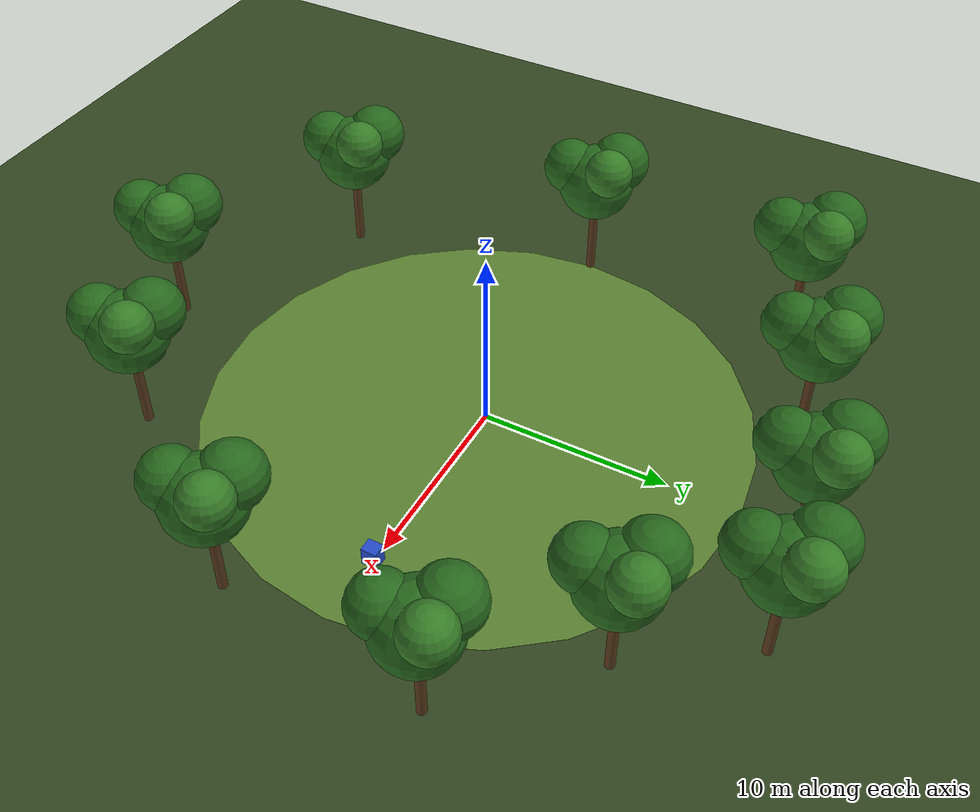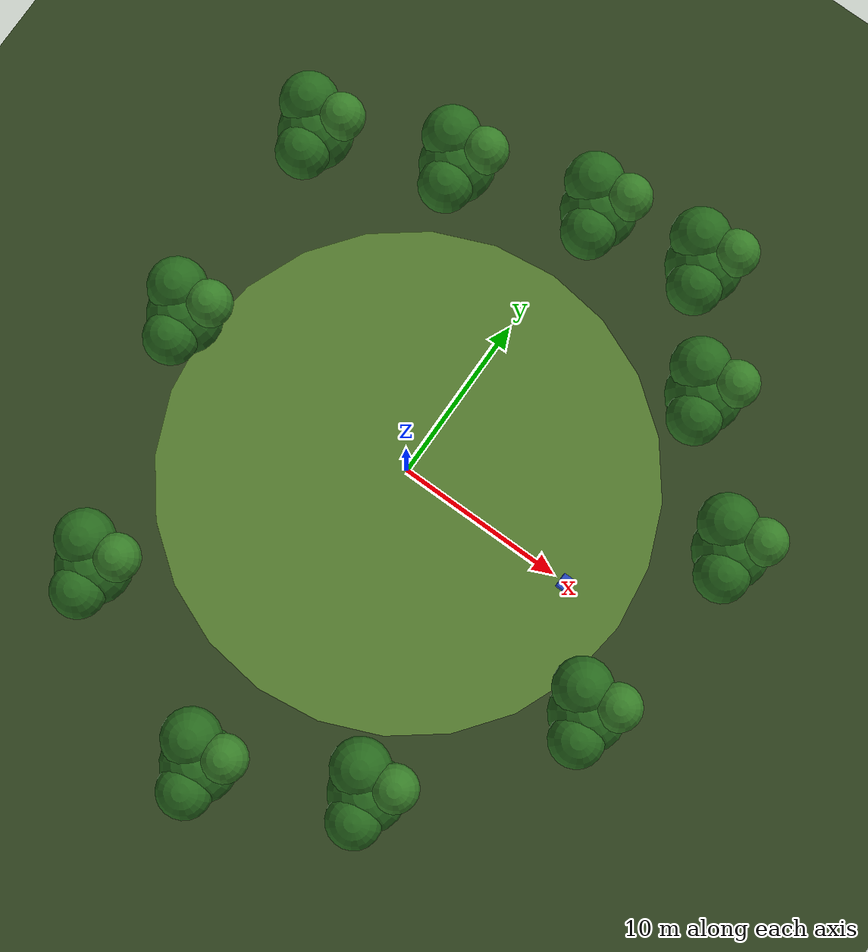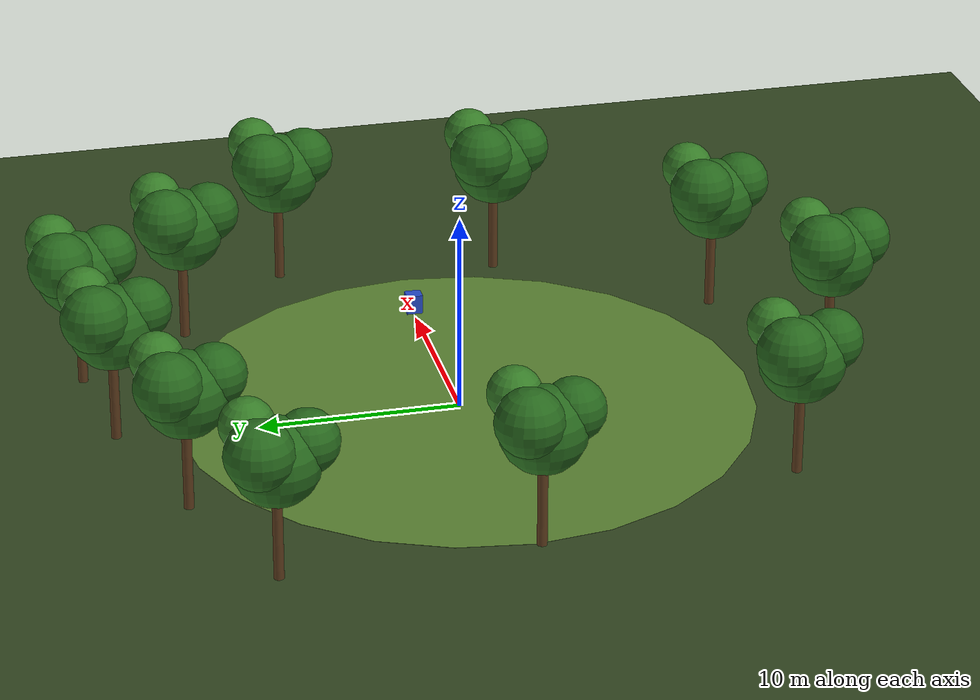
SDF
<sdf version="1.7">
 <world name="forest">
  <plugin name="gazebo_ros_state" filename="libgazebo_ros_state.so"/>
  <scene>
   <ambient>0.45 0.45 0.45 1</ambient>
   <background>0.55 0.68 0.85 1</background>
   <shadows>1</shadows>
   <sky><clouds><speed>8</speed><direction>1.2</direction></clouds></sky>
   <fog>
    <type>linear</type>
    <color>0.75 0.8 0.85 1</color>
    <density>0.02</density>
    <start>30</start>
    <end>120</end>
   </fog>
  </scene>
  <physics name="default_physics" type="ode">
   <max_step_size>0.001</max_step_size>
   <real_time_factor>1</real_time_factor>
   <real_time_update_rate>1000</real_time_update_rate>
   <ode>
    <solver>
     <type>quick</type>
     <iters>50</iters>
     <sor>1.3</sor>
     <use_dynamic_moi_rescaling>0</use_dynamic_moi_rescaling>
    </solver>
    <constraints>
     <cfm>0</cfm>
     <erp>0.2</erp>
     <contact_max_correcting_vel>100</contact_max_correcting_vel>
     <contact_surface_layer>0.001</contact_surface_layer>
    </constraints>
   </ode>
  </physics>
  <light name="sun" type="directional">
   <pose>0 0 50 0 -0 0</pose>
   <diffuse>0.95 0.92 0.82 1</diffuse>
   <specular>0.25 0.25 0.25 1</specular>
   <attenuation>
    <range>200</range>
    <constant>0.9</constant>
    <linear>0.01</linear>
    <quadratic>0</quadratic>
   </attenuation>
   <direction>-0.4 0.3 -0.85</direction>
   <spot><inner_angle>0</inner_angle><outer_angle>0</outer_angle><falloff>0</falloff></spot>
  </light>
  <model name="ground">
   <static>1</static>
   <pose>-0.076598 0.019609 -0.1 0 -0 0</pose>
   <link name="link">
    <collision name="collision"><geometry><box><size>400 400 0.2</size></box></geometry></collision>
    <visual name="visual">
     <geometry><box><size>400 400 0.2</size></box></geometry>
     <material>
      <ambient>0.1 0.16 0.07 1</ambient>
      <diffuse>0.2 0.28 0.13 1</diffuse>
      <specular>0.02 0.02 0.02 1</specular>
     </material>
    </visual>
   </link>
  </model>
  <model name="clearing">
   <static>1</static>
   <pose>0.333066 -0.338981 0.006 0 -0 0</pose>
   <link name="link">
    <collision name="collision">
     <geometry><cylinder><radius>14.2739</radius><length>0.01</length></cylinder></geometry>
    </collision>
    <visual name="visual">
     <geometry><cylinder><radius>14.2739</radius><length>0.01</length></cylinder></geometry>
     <material>
      <ambient>0.2 0.34 0.12 1</ambient>
      <diffuse>0.36 0.52 0.2 1</diffuse>
      <specular>0.02 0.02 0.02 1</specular>
     </material>
    </visual>
   </link>
  </model>
  <model name="tree_0_0">
   <static>1</static>
   <pose>15.244 -5.34268 0 0 -0 2.418</pose>
   <link name="link">
    <collision name="cylinder_0_collision">
     <pose>0 0 3.015 0 -0 0</pose>
     <geometry><cylinder><radius>0.24</radius><length>6.03</length></cylinder></geometry>
    </collision>
    <visual name="cylinder_0_visual">
     <pose>0 0 3.015 0 -0 0</pose>
     <geometry><cylinder><radius>0.24</radius><length>6.03</length></cylinder></geometry>
     <material>
      <ambient>0.18 0.11 0.05 1</ambient>
      <diffuse>0.36 0.23 0.11 1</diffuse>
      <specular>0.05 0.05 0.05 1</specular>
     </material>
    </visual>
    <visual name="sphere_1_visual">
     <pose>0 0 5.9094 0 -0 0</pose>
     <geometry><sphere><radius>2.0849</radius></sphere></geometry>
     <material>
      <ambient>0.05 0.16 0.03 1</ambient>
      <diffuse>0.16 0.42 0.12 1</diffuse>
      <specular>0.05 0.05 0.05 1</specular>
     </material>
    </visual>
    <visual name="sphere_2_visual">
     <pose>1.3552 0 6.8742 0 -0 0</pose>
     <geometry><sphere><radius>1.6262</radius></sphere></geometry>
     <material>
      <ambient>0.05 0.16 0.03 1</ambient>
      <diffuse>0.16 0.42 0.12 1</diffuse>
      <specular>0.05 0.05 0.05 1</specular>
     </material>
    </visual>
    <visual name="sphere_3_visual">
     <pose>-1.1467 0.9382 6.6329 0 -0 0</pose>
     <geometry><sphere><radius>1.5011</radius></sphere></geometry>
     <material>
      <ambient>0.05 0.16 0.03 1</ambient>
      <diffuse>0.16 0.42 0.12 1</diffuse>
      <specular>0.05 0.05 0.05 1</specular>
     </material>
    </visual>
    <visual name="sphere_4_visual">
     <pose>0 -1.4594 7.3562 0 -0 0</pose>
     <geometry><sphere><radius>1.2926</radius></sphere></geometry>
     <material>
      <ambient>0.06 0.18 0.04 1</ambient>
      <diffuse>0.22 0.5 0.16 1</diffuse>
      <specular>0.05 0.05 0.05 1</specular>
     </material>
    </visual>
   </link>
  </model>
  <gravity>0 0 -9.8</gravity>
  <magnetic_field>6e-06 2.3e-05 -4.2e-05</magnetic_field>
  <atmosphere type="adiabatic"/>
  <audio><device>default</device></audio>
  <spherical_coordinates>
   <surface_model>EARTH_WGS84</surface_model>
   <latitude_deg>0</latitude_deg>
   <longitude_deg>0</longitude_deg>
   <elevation>0</elevation>
   <heading_deg>0</heading_deg>
  </spherical_coordinates>
  <model name="tree_0_0_clone">
   <static>1</static>
   <pose>8.36672 -15.2203 0 0 -0 2.418</pose>
   <link name="link">
    <collision name="cylinder_0_collision">
     <pose>0 0 3.015 0 -0 0</pose>
     <geometry><cylinder><radius>0.24</radius><length>6.03</length></cylinder></geometry>
    </collision>
    <visual name="cylinder_0_visual">
     <pose>0 0 3.015 0 -0 0</pose>
     <geometry><cylinder><radius>0.24</radius><length>6.03</length></cylinder></geometry>
     <material>
      <ambient>0.18 0.11 0.05 1</ambient>
      <diffuse>0.36 0.23 0.11 1</diffuse>
      <specular>0.05 0.05 0.05 1</specular>
     </material>
    </visual>
    <visual name="sphere_1_visual">
     <pose>0 0 5.9094 0 -0 0</pose>
     <geometry><sphere><radius>2.0849</radius></sphere></geometry>
     <material>
      <ambient>0.05 0.16 0.03 1</ambient>
      <diffuse>0.16 0.42 0.12 1</diffuse>
      <specular>0.05 0.05 0.05 1</specular>
     </material>
    </visual>
    <visual name="sphere_2_visual">
     <pose>1.3552 0 6.8742 0 -0 0</pose>
     <geometry><sphere><radius>1.6262</radius></sphere></geometry>
     <material>
      <ambient>0.05 0.16 0.03 1</ambient>
      <diffuse>0.16 0.42 0.12 1</diffuse>
      <specular>0.05 0.05 0.05 1</specular>
     </material>
    </visual>
    <visual name="sphere_3_visual">
     <pose>-1.1467 0.9382 6.6329 0 -0 0</pose>
     <geometry><sphere><radius>1.5011</radius></sphere></geometry>
     <material>
      <ambient>0.05 0.16 0.03 1</ambient>
      <diffuse>0.16 0.42 0.12 1</diffuse>
      <specular>0.05 0.05 0.05 1</specular>
     </material>
    </visual>
    <visual name="sphere_4_visual">
     <pose>0 -1.4594 7.3562 0 -0 0</pose>
     <geometry><sphere><radius>1.2926</radius></sphere></geometry>
     <material>
      <ambient>0.06 0.18 0.04 1</ambient>
      <diffuse>0.22 0.5 0.16 1</diffuse>
      <specular>0.05 0.05 0.05 1</specular>
     </material>
    </visual>
   </link>
  </model>
  <model name="tree_0_0_clone_0">
   <static>1</static>
   <pose>10.7829 11.8633 0 0 -0 2.418</pose>
   <link name="link">
    <collision name="cylinder_0_collision">
     <pose>0 0 3.015 0 -0 0</pose>
     <geometry><cylinder><radius>0.24</radius><length>6.03</length></cylinder></geometry>
    </collision>
    <visual name="cylinder_0_visual">
     <pose>0 0 3.015 0 -0 0</pose>
     <geometry><cylinder><radius>0.24</radius><length>6.03</length></cylinder></geometry>
     <material>
      <ambient>0.18 0.11 0.05 1</ambient>
      <diffuse>0.36 0.23 0.11 1</diffuse>
      <specular>0.05 0.05 0.05 1</specular>
     </material>
    </visual>
    <visual name="sphere_1_visual">
     <pose>0 0 5.9094 0 -0 0</pose>
     <geometry><sphere><radius>2.0849</radius></sphere></geometry>
     <material>
      <ambient>0.05 0.16 0.03 1</ambient>
      <diffuse>0.16 0.42 0.12 1</diffuse>
      <specular>0.05 0.05 0.05 1</specular>
     </material>
    </visual>
    <visual name="sphere_2_visual">
     <pose>1.3552 0 6.8742 0 -0 0</pose>
     <geometry><sphere><radius>1.6262</radius></sphere></geometry>
     <material>
      <ambient>0.05 0.16 0.03 1</ambient>
      <diffuse>0.16 0.42 0.12 1</diffuse>
      <specular>0.05 0.05 0.05 1</specular>
     </material>
    </visual>
    <visual name="sphere_3_visual">
     <pose>-1.1467 0.9382 6.6329 0 -0 0</pose>
     <geometry><sphere><radius>1.5011</radius></sphere></geometry>
     <material>
      <ambient>0.05 0.16 0.03 1</ambient>
      <diffuse>0.16 0.42 0.12 1</diffuse>
      <specular>0.05 0.05 0.05 1</specular>
     </material>
    </visual>
    <visual name="sphere_4_visual">
     <pose>0 -1.4594 7.3562 0 -0 0</pose>
     <geometry><sphere><radius>1.2926</radius></sphere></geometry>
     <material>
      <ambient>0.06 0.18 0.04 1</ambient>
      <diffuse>0.22 0.5 0.16 1</diffuse>
      <specular>0.05 0.05 0.05 1</specular>
     </material>
    </visual>
   </link>
  </model>
  <model name="tree_0_0_clone_1">
   <static>1</static>
   <pose>16.5596 5.9036 0 0 -0 2.418</pose>
   <link name="link">
    <collision name="cylinder_0_collision">
     <pose>0 0 3.015 0 -0 0</pose>
     <geometry><cylinder><radius>0.24</radius><length>6.03</length></cylinder></geometry>
    </collision>
    <visual name="cylinder_0_visual">
     <pose>0 0 3.015 0 -0 0</pose>
     <geometry><cylinder><radius>0.24</radius><length>6.03</length></cylinder></geometry>
     <material>
      <ambient>0.18 0.11 0.05 1</ambient>
      <diffuse>0.36 0.23 0.11 1</diffuse>
      <specular>0.05 0.05 0.05 1</specular>
     </material>
    </visual>
    <visual name="sphere_1_visual">
     <pose>0 0 5.9094 0 -0 0</pose>
     <geometry><sphere><radius>2.0849</radius></sphere></geometry>
     <material>
      <ambient>0.05 0.16 0.03 1</ambient>
      <diffuse>0.16 0.42 0.12 1</diffuse>
      <specular>0.05 0.05 0.05 1</specular>
     </material>
    </visual>
    <visual name="sphere_2_visual">
     <pose>1.3552 0 6.8742 0 -0 0</pose>
     <geometry><sphere><radius>1.6262</radius></sphere></geometry>
     <material>
      <ambient>0.05 0.16 0.03 1</ambient>
      <diffuse>0.16 0.42 0.12 1</diffuse>
      <specular>0.05 0.05 0.05 1</specular>
     </material>
    </visual>
    <visual name="sphere_3_visual">
     <pose>-1.1467 0.9382 6.6329 0 -0 0</pose>
     <geometry><sphere><radius>1.5011</radius></sphere></geometry>
     <material>
      <ambient>0.05 0.16 0.03 1</ambient>
      <diffuse>0.16 0.42 0.12 1</diffuse>
      <specular>0.05 0.05 0.05 1</specular>
     </material>
    </visual>
    <visual name="sphere_4_visual">
     <pose>0 -1.4594 7.3562 0 -0 0</pose>
     <geometry><sphere><radius>1.2926</radius></sphere></geometry>
     <material>
      <ambient>0.06 0.18 0.04 1</ambient>
      <diffuse>0.22 0.5 0.16 1</diffuse>
      <specular>0.05 0.05 0.05 1</specular>
     </material>
    </visual>
   </link>
  </model>
  <model name="tree_0_0_clone_2">
   <static>1</static>
   <pose>0.623759 16.8124 0 0 -0 2.418</pose>
   <link name="link">
    <collision name="cylinder_0_collision">
     <pose>0 0 3.015 0 -0 0</pose>
     <geometry><cylinder><radius>0.24</radius><length>6.03</length></cylinder></geometry>
    </collision>
    <visual name="cylinder_0_visual">
     <pose>0 0 3.015 0 -0 0</pose>
     <geometry><cylinder><radius>0.24</radius><length>6.03</length></cylinder></geometry>
     <material>
      <ambient>0.18 0.11 0.05 1</ambient>
      <diffuse>0.36 0.23 0.11 1</diffuse>
      <specular>0.05 0.05 0.05 1</specular>
     </material>
    </visual>
    <visual name="sphere_1_visual">
     <pose>0 0 5.9094 0 -0 0</pose>
     <geometry><sphere><radius>2.0849</radius></sphere></geometry>
     <material>
      <ambient>0.05 0.16 0.03 1</ambient>
      <diffuse>0.16 0.42 0.12 1</diffuse>
      <specular>0.05 0.05 0.05 1</specular>
     </material>
    </visual>
    <visual name="sphere_2_visual">
     <pose>1.3552 0 6.8742 0 -0 0</pose>
     <geometry><sphere><radius>1.6262</radius></sphere></geometry>
     <material>
      <ambient>0.05 0.16 0.03 1</ambient>
      <diffuse>0.16 0.42 0.12 1</diffuse>
      <specular>0.05 0.05 0.05 1</specular>
     </material>
    </visual>
    <visual name="sphere_3_visual">
     <pose>-1.1467 0.9382 6.6329 0 -0 0</pose>
     <geometry><sphere><radius>1.5011</radius></sphere></geometry>
     <material>
      <ambient>0.05 0.16 0.03 1</ambient>
      <diffuse>0.16 0.42 0.12 1</diffuse>
      <specular>0.05 0.05 0.05 1</specular>
     </material>
    </visual>
    <visual name="sphere_4_visual">
     <pose>0 -1.4594 7.3562 0 -0 0</pose>
     <geometry><sphere><radius>1.2926</radius></sphere></geometry>
     <material>
      <ambient>0.06 0.18 0.04 1</ambient>
      <diffuse>0.22 0.5 0.16 1</diffuse>
      <specular>0.05 0.05 0.05 1</specular>
     </material>
    </visual>
   </link>
  </model>
  <model name="tree_0_0_clone_3">
   <static>1</static>
   <pose>6.88045 17.5873 0 0 -0 2.418</pose>
   <link name="link">
    <collision name="cylinder_0_collision">
     <pose>0 0 3.015 0 -0 0</pose>
     <geometry><cylinder><radius>0.24</radius><length>6.03</length></cylinder></geometry>
    </collision>
    <visual name="cylinder_0_visual">
     <pose>0 0 3.015 0 -0 0</pose>
     <geometry><cylinder><radius>0.24</radius><length>6.03</length></cylinder></geometry>
     <material>
      <ambient>0.18 0.11 0.05 1</ambient>
      <diffuse>0.36 0.23 0.11 1</diffuse>
      <specular>0.05 0.05 0.05 1</specular>
     </material>
    </visual>
    <visual name="sphere_1_visual">
     <pose>0 0 5.9094 0 -0 0</pose>
     <geometry><sphere><radius>2.0849</radius></sphere></geometry>
     <material>
      <ambient>0.05 0.16 0.03 1</ambient>
      <diffuse>0.16 0.42 0.12 1</diffuse>
      <specular>0.05 0.05 0.05 1</specular>
     </material>
    </visual>
    <visual name="sphere_2_visual">
     <pose>1.3552 0 6.8742 0 -0 0</pose>
     <geometry><sphere><radius>1.6262</radius></sphere></geometry>
     <material>
      <ambient>0.05 0.16 0.03 1</ambient>
      <diffuse>0.16 0.42 0.12 1</diffuse>
      <specular>0.05 0.05 0.05 1</specular>
     </material>
    </visual>
    <visual name="sphere_3_visual">
     <pose>-1.1467 0.9382 6.6329 0 -0 0</pose>
     <geometry><sphere><radius>1.5011</radius></sphere></geometry>
     <material>
      <ambient>0.05 0.16 0.03 1</ambient>
      <diffuse>0.16 0.42 0.12 1</diffuse>
      <specular>0.05 0.05 0.05 1</specular>
     </material>
    </visual>
    <visual name="sphere_4_visual">
     <pose>0 -1.4594 7.3562 0 -0 0</pose>
     <geometry><sphere><radius>1.2926</radius></sphere></geometry>
     <material>
      <ambient>0.06 0.18 0.04 1</ambient>
      <diffuse>0.22 0.5 0.16 1</diffuse>
      <specular>0.05 0.05 0.05 1</specular>
     </material>
    </visual>
   </link>
  </model>
  <model name="tree_0_0_clone_4">
   <static>1</static>
   <pose>-7 14.499 0 0 -0 2.418</pose>
   <link name="link">
    <collision name="cylinder_0_collision">
     <pose>0 0 3.015 0 -0 0</pose>
     <geometry><cylinder><radius>0.24</radius><length>6.03</length></cylinder></geometry>
    </collision>
    <visual name="cylinder_0_visual">
     <pose>0 0 3.015 0 -0 0</pose>
     <geometry><cylinder><radius>0.24</radius><length>6.03</length></cylinder></geometry>
     <material>
      <ambient>0.18 0.11 0.05 1</ambient>
      <diffuse>0.36 0.23 0.11 1</diffuse>
      <specular>0.05 0.05 0.05 1</specular>
     </material>
    </visual>
    <visual name="sphere_1_visual">
     <pose>0 0 5.9094 0 -0 0</pose>
     <geometry><sphere><radius>2.0849</radius></sphere></geometry>
     <material>
      <ambient>0.05 0.16 0.03 1</ambient>
      <diffuse>0.16 0.42 0.12 1</diffuse>
      <specular>0.05 0.05 0.05 1</specular>
     </material>
    </visual>
    <visual name="sphere_2_visual">
     <pose>1.3552 0 6.8742 0 -0 0</pose>
     <geometry><sphere><radius>1.6262</radius></sphere></geometry>
     <material>
      <ambient>0.05 0.16 0.03 1</ambient>
      <diffuse>0.16 0.42 0.12 1</diffuse>
      <specular>0.05 0.05 0.05 1</specular>
     </material>
    </visual>
    <visual name="sphere_3_visual">
     <pose>-1.1467 0.9382 6.6329 0 -0 0</pose>
     <geometry><sphere><radius>1.5011</radius></sphere></geometry>
     <material>
      <ambient>0.05 0.16 0.03 1</ambient>
      <diffuse>0.16 0.42 0.12 1</diffuse>
      <specular>0.05 0.05 0.05 1</specular>
     </material>
    </visual>
    <visual name="sphere_4_visual">
     <pose>0 -1.4594 7.3562 0 -0 0</pose>
     <geometry><sphere><radius>1.2926</radius></sphere></geometry>
     <material>
      <ambient>0.06 0.18 0.04 1</ambient>
      <diffuse>0.22 0.5 0.16 1</diffuse>
      <specular>0.05 0.05 0.05 1</specular>
     </material>
    </visual>
   </link>
  </model>
  <model name="tree_0_0_clone_5">
   <static>1</static>
   <pose>-14.2504 11.604 0 0 -0 2.418</pose>
   <link name="link">
    <collision name="cylinder_0_collision">
     <pose>0 0 3.015 0 -0 0</pose>
     <geometry><cylinder><radius>0.24</radius><length>6.03</length></cylinder></geometry>
    </collision>
    <visual name="cylinder_0_visual">
     <pose>0 0 3.015 0 -0 0</pose>
     <geometry><cylinder><radius>0.24</radius><length>6.03</length></cylinder></geometry>
     <material>
      <ambient>0.18 0.11 0.05 1</ambient>
      <diffuse>0.36 0.23 0.11 1</diffuse>
      <specular>0.05 0.05 0.05 1</specular>
     </material>
    </visual>
    <visual name="sphere_1_visual">
     <pose>0 0 5.9094 0 -0 0</pose>
     <geometry><sphere><radius>2.0849</radius></sphere></geometry>
     <material>
      <ambient>0.05 0.16 0.03 1</ambient>
      <diffuse>0.16 0.42 0.12 1</diffuse>
      <specular>0.05 0.05 0.05 1</specular>
     </material>
    </visual>
    <visual name="sphere_2_visual">
     <pose>1.3552 0 6.8742 0 -0 0</pose>
     <geometry><sphere><radius>1.6262</radius></sphere></geometry>
     <material>
      <ambient>0.05 0.16 0.03 1</ambient>
      <diffuse>0.16 0.42 0.12 1</diffuse>
      <specular>0.05 0.05 0.05 1</specular>
     </material>
    </visual>
    <visual name="sphere_3_visual">
     <pose>-1.1467 0.9382 6.6329 0 -0 0</pose>
     <geometry><sphere><radius>1.5011</radius></sphere></geometry>
     <material>
      <ambient>0.05 0.16 0.03 1</ambient>
      <diffuse>0.16 0.42 0.12 1</diffuse>
      <specular>0.05 0.05 0.05 1</specular>
     </material>
    </visual>
    <visual name="sphere_4_visual">
     <pose>0 -1.4594 7.3562 0 -0 0</pose>
     <geometry><sphere><radius>1.2926</radius></sphere></geometry>
     <material>
      <ambient>0.06 0.18 0.04 1</ambient>
      <diffuse>0.22 0.5 0.16 1</diffuse>
      <specular>0.05 0.05 0.05 1</specular>
     </material>
    </visual>
   </link>
  </model>
  <model name="tree_0_0_clone_6">
   <static>1</static>
   <pose>-14 -0.575723 0 0 -0 2.418</pose>
   <link name="link">
    <collision name="cylinder_0_collision">
     <pose>0 0 3.015 0 -0 0</pose>
     <geometry><cylinder><radius>0.24</radius><length>6.03</length></cylinder></geometry>
    </collision>
    <visual name="cylinder_0_visual">
     <pose>0 0 3.015 0 -0 0</pose>
     <geometry><cylinder><radius>0.24</radius><length>6.03</length></cylinder></geometry>
     <material>
      <ambient>0.18 0.11 0.05 1</ambient>
      <diffuse>0.36 0.23 0.11 1</diffuse>
      <specular>0.05 0.05 0.05 1</specular>
     </material>
    </visual>
    <visual name="sphere_1_visual">
     <pose>0 0 5.9094 0 -0 0</pose>
     <geometry><sphere><radius>2.0849</radius></sphere></geometry>
     <material>
      <ambient>0.05 0.16 0.03 1</ambient>
      <diffuse>0.16 0.42 0.12 1</diffuse>
      <specular>0.05 0.05 0.05 1</specular>
     </material>
    </visual>
    <visual name="sphere_2_visual">
     <pose>1.3552 0 6.8742 0 -0 0</pose>
     <geometry><sphere><radius>1.6262</radius></sphere></geometry>
     <material>
      <ambient>0.05 0.16 0.03 1</ambient>
      <diffuse>0.16 0.42 0.12 1</diffuse>
      <specular>0.05 0.05 0.05 1</specular>
     </material>
    </visual>
    <visual name="sphere_3_visual">
     <pose>-1.1467 0.9382 6.6329 0 -0 0</pose>
     <geometry><sphere><radius>1.5011</radius></sphere></geometry>
     <material>
      <ambient>0.05 0.16 0.03 1</ambient>
      <diffuse>0.16 0.42 0.12 1</diffuse>
      <specular>0.05 0.05 0.05 1</specular>
     </material>
    </visual>
    <visual name="sphere_4_visual">
     <pose>0 -1.4594 7.3562 0 -0 0</pose>
     <geometry><sphere><radius>1.2926</radius></sphere></geometry>
     <material>
      <ambient>0.06 0.18 0.04 1</ambient>
      <diffuse>0.22 0.5 0.16 1</diffuse>
      <specular>0.05 0.05 0.05 1</specular>
     </material>
    </visual>
   </link>
  </model>
  <model name="tree_0_0_clone_7">
   <static>1</static>
   <pose>-10 -14 0 0 -0 2.418</pose>
   <link name="link">
    <collision name="cylinder_0_collision">
     <pose>0 0 3.015 0 -0 0</pose>
     <geometry><cylinder><radius>0.24</radius><length>6.03</length></cylinder></geometry>
    </collision>
    <visual name="cylinder_0_visual">
     <pose>0 0 3.015 0 -0 0</pose>
     <geometry><cylinder><radius>0.24</radius><length>6.03</length></cylinder></geometry>
     <material>
      <ambient>0.18 0.11 0.05 1</ambient>
      <diffuse>0.36 0.23 0.11 1</diffuse>
      <specular>0.05 0.05 0.05 1</specular>
     </material>
    </visual>
    <visual name="sphere_1_visual">
     <pose>0 0 5.9094 0 -0 0</pose>
     <geometry><sphere><radius>2.0849</radius></sphere></geometry>
     <material>
      <ambient>0.05 0.16 0.03 1</ambient>
      <diffuse>0.16 0.42 0.12 1</diffuse>
      <specular>0.05 0.05 0.05 1</specular>
     </material>
    </visual>
    <visual name="sphere_2_visual">
     <pose>1.3552 0 6.8742 0 -0 0</pose>
     <geometry><sphere><radius>1.6262</radius></sphere></geometry>
     <material>
      <ambient>0.05 0.16 0.03 1</ambient>
      <diffuse>0.16 0.42 0.12 1</diffuse>
      <specular>0.05 0.05 0.05 1</specular>
     </material>
    </visual>
    <visual name="sphere_3_visual">
     <pose>-1.1467 0.9382 6.6329 0 -0 0</pose>
     <geometry><sphere><radius>1.5011</radius></sphere></geometry>
     <material>
      <ambient>0.05 0.16 0.03 1</ambient>
      <diffuse>0.16 0.42 0.12 1</diffuse>
      <specular>0.05 0.05 0.05 1</specular>
     </material>
    </visual>
    <visual name="sphere_4_visual">
     <pose>0 -1.4594 7.3562 0 -0 0</pose>
     <geometry><sphere><radius>1.2926</radius></sphere></geometry>
     <material>
      <ambient>0.06 0.18 0.04 1</ambient>
      <diffuse>0.22 0.5 0.16 1</diffuse>
      <specular>0.05 0.05 0.05 1</specular>
     </material>
    </visual>
   </link>
  </model>
  <model name="tree_0_0_clone_8">
   <static>1</static>
   <pose>0.477001 -19 0 0 -0 2.418</pose>
   <link name="link">
    <collision name="cylinder_0_collision">
     <pose>0 0 3.015 0 -0 0</pose>
     <geometry><cylinder><radius>0.24</radius><length>6.03</length></cylinder></geometry>
    </collision>
    <visual name="cylinder_0_visual">
     <pose>0 0 3.015 0 -0 0</pose>
     <geometry><cylinder><radius>0.24</radius><length>6.03</length></cylinder></geometry>
     <material>
      <ambient>0.18 0.11 0.05 1</ambient>
      <diffuse>0.36 0.23 0.11 1</diffuse>
      <specular>0.05 0.05 0.05 1</specular>
     </material>
    </visual>
    <visual name="sphere_1_visual">
     <pose>0 0 5.9094 0 -0 0</pose>
     <geometry><sphere><radius>2.0849</radius></sphere></geometry>
     <material>
      <ambient>0.05 0.16 0.03 1</ambient>
      <diffuse>0.16 0.42 0.12 1</diffuse>
      <specular>0.05 0.05 0.05 1</specular>
     </material>
    </visual>
    <visual name="sphere_2_visual">
     <pose>1.3552 0 6.8742 0 -0 0</pose>
     <geometry><sphere><radius>1.6262</radius></sphere></geometry>
     <material>
      <ambient>0.05 0.16 0.03 1</ambient>
      <diffuse>0.16 0.42 0.12 1</diffuse>
      <specular>0.05 0.05 0.05 1</specular>
     </material>
    </visual>
    <visual name="sphere_3_visual">
     <pose>-1.1467 0.9382 6.6329 0 -0 0</pose>
     <geometry><sphere><radius>1.5011</radius></sphere></geometry>
     <material>
      <ambient>0.05 0.16 0.03 1</ambient>
      <diffuse>0.16 0.42 0.12 1</diffuse>
      <specular>0.05 0.05 0.05 1</specular>
     </material>
    </visual>
    <visual name="sphere_4_visual">
     <pose>0 -1.4594 7.3562 0 -0 0</pose>
     <geometry><sphere><radius>1.2926</radius></sphere></geometry>
     <material>
      <ambient>0.06 0.18 0.04 1</ambient>
      <diffuse>0.22 0.5 0.16 1</diffuse>
      <specular>0.05 0.05 0.05 1</specular>
     </material>
    </visual>
   </link>
  </model>
  <model name="track_object">
   <pose>10.8228 -0.060786 0.510996 -6e-06 5e-06 7e-06</pose>
   <link name="link">
    <inertial>
     <mass>1</mass>
     <inertia>
      <ixx>0.166667</ixx>
      <ixy>0</ixy>
      <ixz>0</ixz>
      <iyy>0.166667</iyy>
      <iyz>0</iyz>
      <izz>0.166667</izz>
     </inertia>
    </inertial>
    <collision name="collision"><geometry><box><size>0.730293 0.819536 1</size></box></geometry></collision>
    <visual name="visual">
     <geometry><box><size>0.730293 0.819536 1</size></box></geometry>
     <material>
      <script><name>Gazebo/Blue</name><uri>file://media/materials/scripts/gazebo.material</uri></script>
     </material>
    </visual>
   </link>
  </model>
 </world>
</sdf>
